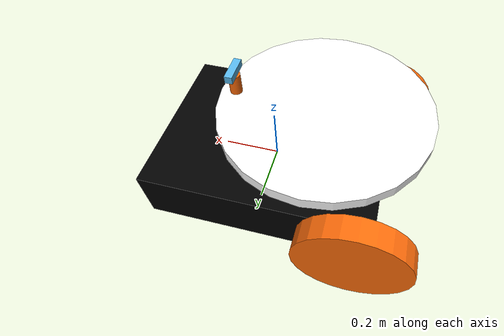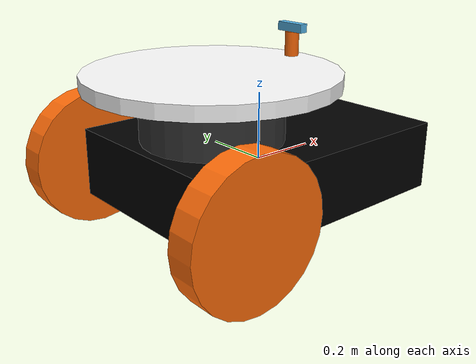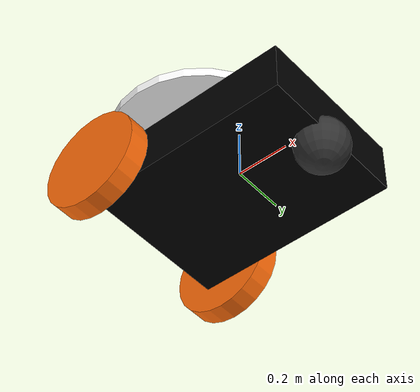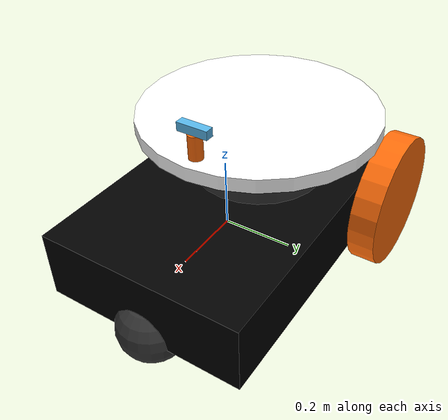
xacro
<?xml version="1.0"?>

<robot name="triwheeler" xmlns:xacro="https://www.ros.org/wiki/xacro" >

    <!-- Included URDF Files -->
    <xacro:include filename="$(find simbot_description)/urdf/triwheeler.urdf.xacro" />

    <!-- Instantiate triwheeler_base_macro once (has no parameters atm) -->
    <xacro:triwheeler_base_macro />

    <!-- RGB-D camera -->
    <xacro:include filename="$(find simbot_description)/urdf/rgbd_camera.urdf.xacro" />
    <xacro:rgbd_camera parent="plate">
        <origin xyz="${6*plate_r/7} 0.0 ${plate_l/2+holder_l/2}" rpy="0 0 0"/>
    </xacro:rgbd_camera>

</robot>

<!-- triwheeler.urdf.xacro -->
<robot xmlns:xacro="https://www.ros.org/wiki/xacro" >

    <!-- constants for robot dimensions -->
    <xacro:property name="PI" value="3.1415926535897931"/>
    <!-- properties of chassis link -->
    <xacro:property name="chassis_x" value="0.8" />
    <xacro:property name="chassis_y" value="0.6" />
    <xacro:property name="chassis_z" value="0.2" />
    <xacro:property name="chassis_m" value="4" />
    <!-- properties of plate link -->
    <xacro:property name="plate_r" value="0.35"/>
    <xacro:property name="plate_l" value="0.04"/>
    <xacro:property name="plate_m" value="0.2"/>
    <!-- properties of plate support link -->
    <xacro:property name="support_r" value="0.2"/>
    <xacro:property name="support_l" value="0.15"/>
    <xacro:property name="support_m" value="0.8"/>
    <!-- properties of link_caster -->
    <xacro:property name="caster_r" value="0.1"/>
    <xacro:property name="caster_m" value="0.1"/>
    <!-- properties of wheel -->
    <xacro:property name="wheel_r" value="0.2"/>
    <xacro:property name="wheel_l" value="0.08"/>
    <xacro:property name="wheel_m" value="0.5"/>
    <!-- wheel mounting positions -->
    <xacro:property name="wheelbase" value="0.7" />
    <xacro:property name="track" value="0.7" />

    <!-- import all gazebo-customization elements, including gazebo colors -->
    <!-- import rviz colors -->
    <xacro:include filename="$(find simbot_description)/urdf/materials.urdf.xacro" />

    <!-- main triwheeler link -->
    <xacro:macro name="triwheeler_base_macro">
        <!-- chassis is the center of the robot's bottom plate -->
        <link name="chassis">
            <visual>
                <origin xyz="0 0 0" rpy="0 0 0" />
                <geometry>
                    <box size="${chassis_x} ${chassis_y} ${chassis_z}"/> />
                </geometry>
                <material name="black"/>
            </visual>
            <collision>
                <origin xyz="0 0 0" rpy="0 0 0" />
                <geometry>
                    <box size="${chassis_x} ${chassis_y} ${chassis_z}"/> />
                </geometry>
            </collision>
        </link>
        <!-- kdl does not support a root link with an inertia, create a dummy link only contains inertia of base_link -->
        <joint name="chassis-chassis_inertial" type="fixed">
            <origin xyz="0 0 0" rpy="0 0 0" />
            <parent link="chassis" />
            <child link="chassis_inertial" />
        </joint>
        <link name="chassis_inertial">
            <inertial>
                <mass value="${chassis_m}"/>
                <origin rpy="0 0 0" xyz="0 0 0"/>
                <inertia ixx="${1/12*chassis_m*(chassis_y*chassis_y+chassis_z*chassis_z)}" ixy="0" ixz="0" iyy="${1/12*chassis_m*(chassis_z*chassis_z+chassis_x*chassis_x)}" iyz="0" izz="${1/12*chassis_m*(chassis_x*chassis_x+chassis_y*chassis_y)}"/>
            </inertial>
        </link>

        <!-- left wheel -->
        <joint name="$chassis-left_wheel" type="continuous">
            <origin xyz="-${wheelbase/2} ${track/2} 0" rpy="0 0 0" />
            <parent link="chassis"/>
            <child link="left_wheel"/>
            <axis xyz="0 1 0" rpy="0 0 0" />
        </joint>

        <link name="left_wheel">
            <visual>
                <origin rpy="${PI/2} 0 0" xyz="0 0 0"/>
                <geometry>
                    <cylinder length="${wheel_l}" radius="${wheel_r}"/>
                </geometry>
                <material name="orange"/>
            </visual>
            <collision>
                <origin rpy="${PI/2} 0 0" xyz="0 0 0" />
                <geometry>
                    <cylinder length="${wheel_l}" radius="${wheel_r}"/>
                </geometry>
            </collision>
            <inertial>
                <mass value="${wheel_m}"/>
                <origin rpy="${PI/2} 0 0" xyz="0 0 0"/>
                <inertia ixx="${1/12*wheel_m*(3*wheel_r*wheel_r+wheel_l*wheel_l)}" ixy="0" ixz="0" iyy="${1/12*wheel_m*(3*wheel_r*wheel_r+wheel_l*wheel_l)}" iyz="0" izz="${1/2*wheel_m*wheel_r*wheel_r}"/>
            </inertial>
        </link>

        <!-- right wheel -->
        <joint name="$chassis-right_wheel" type="continuous">
            <origin xyz="-${wheelbase/2} -${track/2} 0" rpy="0 0 0" />
            <parent link="chassis"/>
            <child link="right_wheel"/>
            <axis xyz="0 1 0" rpy="0 0 0" />
        </joint>

        <link name="right_wheel">
            <visual>
                <origin rpy="${PI/2} 0 0" xyz="0 0 0"/>
                <geometry>
                    <cylinder length="${wheel_l}" radius="${wheel_r}"/>
                </geometry>
                <material name="orange"/>
            </visual>
            <collision>
                <origin rpy="${PI/2} 0 0" xyz="0 0 0" />
                <geometry>
                    <cylinder length="${wheel_l}" radius="${wheel_r}"/>
                </geometry>
            </collision>
            <inertial>
                <mass value="${wheel_m}"/>
                <origin rpy="${PI/2} 0 0" xyz="0 0 0"/>
                <inertia ixx="${1/12*wheel_m*(3*wheel_r*wheel_r+wheel_l*wheel_l)}" ixy="0" ixz="0" iyy="${1/12*wheel_m*(3*wheel_r*wheel_r+wheel_l*wheel_l)}" iyz="0" izz="${1/2*wheel_m*wheel_r*wheel_r}"/>
            </inertial>
        </link>

        <!-- caster ball -->
        <joint name="joint_chassis_caster" type="fixed">
            <origin rpy="0 0 0" xyz="${wheelbase/2} 0 -${chassis_z/2}"/>
            <parent link="chassis"/>
            <child link="caster"/>
        </joint>

        <link name="caster">
            <visual>
                <origin rpy="0 0 0" xyz="0 0 0"/>
                <geometry>
                    <sphere radius="${caster_r}"/>
                </geometry>
                <material name="grey"/>
            </visual>
            <collision>
                <origin rpy=" 0 0 0" xyz="0 0 0"/>
                <geometry>
                    <sphere radius="${caster_r}"/>
                </geometry>
            </collision>
            <inertial>
                <mass value="${caster_m}"/>
                <origin rpy="0 0 0" xyz="0 0 0"/>
                <inertia ixx="${2/5*caster_m*caster_r*caster_r}" ixy="0" ixz="0" iyy="${2/5*caster_m*caster_r*caster_r}" iyz="0" izz="${2/5*caster_m*caster_r*caster_r}"/>
            </inertial>
        </link>

        <joint name="chassis-support" type="fixed">
            <origin rpy="0 0 0" xyz="-${wheelbase/4} 0 ${chassis_z/2+support_l/2}"/>
            <parent link="chassis"/>
            <child link="support"/>
        </joint>

        <link name="support">
            <visual>
                <origin rpy="0 0 0" xyz="0 0 0"/>
                <geometry>
                    <cylinder length="${support_l}" radius="${support_r}"/>
                </geometry>
                <material name="grey"/>
            </visual>
            <collision>
                <origin rpy="0 0 0" xyz="0 0 0" />
                <geometry>
                    <cylinder length="${support_l}" radius="${support_r}"/>
                </geometry>
            </collision>
            <inertial>
                <mass value="${support_m}"/>
                <origin rpy="0 0 0" xyz="0 0 0"/>
                <inertia ixx="${1/12*support_m*(3*support_r*support_r+support_l*support_l)}" ixy="0" ixz="0" iyy="${1/12*support_m*(3*support_r*support_r+support_l*support_l)}" iyz="0" izz="${1/2*support_m*support_r*support_r}"/>
            </inertial>
        </link>

        <joint name="support-plate" type="revolute">
            <origin rpy="0 0 0" xyz="0 0 ${support_l/2+plate_l/2}"/>
            <parent link="support"/>
            <child link="plate"/>
            <limit effort="0" lower="0" upper="0" velocity="0"/>
            <axis rpy="0 0 0" xyz="0 0 1"/>
        </joint>

        <link name="plate">
            <visual>
                <origin rpy="0 0 0" xyz="0 0 0"/>
                <geometry>
                    <cylinder length="${plate_l}" radius="${plate_r}"/>
                </geometry>
                <material name="white"/>
            </visual>
            <collision>
                <origin rpy="0 0 0" xyz="0 0 0" />
                <geometry>
                    <cylinder length="${plate_l}" radius="${plate_r}"/>
                </geometry>
            </collision>
            <inertial>
                <mass value="${plate_m}"/>
                <origin rpy="0 0 0" xyz="0 0 0"/>
                <inertia ixx="${1/12*plate_m*(3*plate_r*plate_r+plate_l*plate_l)}" ixy="0" ixz="0" iyy="${1/12*plate_m*(3*plate_r*plate_r+plate_l*plate_l)}" iyz="0" izz="${1/2*plate_m*plate_r*plate_r}"/>
            </inertial>
        </link>

        <joint name="chassis-imu" type="revolute">
            <origin rpy="0 0 0" xyz="${chassis_x/4} 0 ${chassis_z/2}"/>
            <parent link="chassis"/>
            <child link="imu"/>
            <limit lower="0" upper="0" effort="0" velocity="0"/>
            <axis xyz="0 0 1"/>
        </joint>
        <link name="imu"/>

        <transmission name="left_wheel-trans" type="simpletransmission">
            <type>transmission_interface/simpletransmission</type>
            <actuator name="left_wheel-motor">
                <mechanicalreduction>1</mechanicalreduction>
            </actuator>
            <joint name="chassis-left_wheel">
                <hardwareinterface>hardware_interface/velocityjointinterface</hardwareinterface>
            </joint>
        </transmission>

        <transmission name="right_wheel-trans" type="simpletransmission">
            <type>transmission_interface/simpletransmission</type>
            <actuator name="right_wheel-motor">
                <mechanicalreduction>1</mechanicalreduction>
            </actuator>
            <joint name="chassis-right_wheel">
                <hardwareinterface>hardware_interface/velocityjointinterface</hardwareinterface>
            </joint>
        </transmission>

        <gazebo reference="imu">
            <gravity>true</gravity>
            <sensor name="imu_sensor" type="imu">
                <always_on>true</always_on>
                <update_rate>100</update_rate>
                <visualize>true</visualize>
                <topic>__default_topic__</topic>
                <plugin filename="libgazebo_ros_imu_sensor.so" name="imu_plugin">
                    <topicName>imu</topicName>
                    <bodyName>imu_link</bodyName>
                    <updateRateHZ>10.0</updateRateHZ>
                    <gaussianNoise>0.0</gaussianNoise>
                    <xyzOffset>0 0 0</xyzOffset>
                    <rpyOffset>0 0 0</rpyOffset>
                    <frameName>imu_link</frameName>
                </plugin>
                <pose>0 0 0 0 0 0</pose>
            </sensor>
        </gazebo>

    </xacro:macro>

</robot>

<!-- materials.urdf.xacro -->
<robot>

  <material name="black">
    <color rgba="0.0 0.0 0.0 1.0"/>
  </material>

  <material name="blue">
    <color rgba="0.0 0.0 0.8 1.0"/>
  </material>

  <material name="green">
    <color rgba="0.0 0.8 0.0 1.0"/>
  </material>

  <material name="grey">
    <color rgba="0.2 0.2 0.2 1.0"/>
  </material>

  <material name="orange">
    <color rgba="${255/255} ${108/255} ${10/255} 1.0"/>
  </material>

  <material name="brown">
    <color rgba="${222/255} ${207/255} ${195/255} 1.0"/>
  </material>

  <material name="red">
    <color rgba="0.8 0.0 0.0 1.0"/>
  </material>

  <material name="white">
    <color rgba="1.0 1.0 1.0 1.0"/>
  </material>

  <material name="uc_red">
    <color rgba="${224/255} ${1/255} ${34/255} 1.0"/>
  </material>

  <material name="aluminum">
    <color rgba="0.5 0.5 0.5 1"/>
  </material>

</robot>

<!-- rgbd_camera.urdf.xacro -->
<robot xmlns:xacro="https://www.ros.org/wiki/xacro">
    <xacro:property name="M_PI" value="3.1415926535897931" />

    <xacro:property name="holder_mass" value="0.072"/>
    <xacro:property name="holder_r" value="0.02"/>
    <xacro:property name="holder_l" value="0.07"/>

    <xacro:property name="camera_width" value="0.09"/>
    <xacro:property name="camera_height" value="0.025"/>
    <xacro:property name="camera_depth" value="0.025"/>
    <xacro:property name="camera_mass" value="0.072"/>

    <xacro:macro name="rgbd_camera" params="parent *origin">
        <joint name="${parent}-camera_holder" type="revolute">
            <xacro:insert_block name="origin" />
            <parent link="${parent}"/>
            <child link="camera_holder"/>
            <limit lower="${-M_PI/4}" upper="${M_PI/4}" effort="50" velocity="${M_PI}"/>
            <axis xyz="0 0 1"/>
        </joint>

        <link name="camera_holder">
            <visual>
                <origin rpy="0 0 0" xyz="0 0 0"/>
                <geometry>
                    <cylinder length="${holder_l}" radius="${holder_r}"/>
                </geometry>
                <material name="orange"/>
            </visual>
            <collision>
                <origin rpy="0 0 0" xyz="0 0 0" />
                <geometry>
                    <cylinder length="${holder_l}" radius="${holder_r}"/>
                </geometry>
            </collision>
            <inertial>
				<mass value="${holder_mass}" />
				<origin xyz="0 0 0" />
				<inertia ixx="${1/12*holder_mass*(3*holder_r*holder_r+holder_l*holder_l)}" ixy="0" ixz="0" iyy="${1/12*holder_mass*(3*holder_r*holder_r+holder_l*holder_l)}" iyz="0" izz="${1/2*holder_mass*holder_r*holder_r}"/>
			</inertial>
		</link>

        <joint name="camera_holder-camera_body" type="revolute">
            <origin rpy="0 0 0" xyz="0 0 ${holder_l/2+camera_height/2}"/>
            <parent link="camera_holder"/>
            <child link="camera_body"/>
            <limit lower="${-M_PI/6}" upper="${M_PI/12}" effort="50" velocity="${M_PI}"/>
            <axis xyz="0 1 0"/>
        </joint>

        <link name="camera_body">
			<visual>
				<origin xyz="0 0 0" rpy="0 0 0" />
				<geometry>
					<box size="${camera_depth} ${camera_width} ${camera_height}" />
				</geometry>
                <color rgba="0.5 0.5 0.5 1"/>
			</visual>
			<collision>
				<origin xyz="0 0 0" rpy="0 0 0" />
				<geometry>
                    <box size="${camera_depth} ${camera_width} ${camera_height}" />
				</geometry>
			</collision>
            <inertial>
				<mass value="${camera_mass}" />
				<origin xyz="0 0 0" />
				<inertia ixx="5.8083e-4" ixy="0" ixz="0" iyy="3.0833e-5" iyz="0" izz="5.9083e-4" />
			</inertial>
		</link>

        <joint name="camera_body-depth_frame" type="fixed">
            <origin xyz="${camera_depth/2} 0.0175 0.0" rpy="${-M_PI/2} 0 ${-M_PI/2}" />
            <parent link="camera_body" />
            <child link="camera_depth_frame"/>
        </joint>

        <link name="camera_depth_frame"/>

        <joint name="camera_body-depth_optical" type="fixed">
            <origin xyz="${camera_depth/2} 0.0175 0" rpy="0 0 0" />
            <parent link="camera_body" />
            <child link="camera_depth_optical"/>
        </joint>

        <link name="camera_depth_optical"/>

        <gazebo reference="camera_depth_optical">
            <sensor type="depth" name="camera">
                <update_rate>30</update_rate>
                <camera>
                    <horizontal_fov>${69.4 * M_PI/180.0}</horizontal_fov>
                    <image>
                        <format>B8G8R8</format>
                        <width>640</width>
                        <height>480</height>
                    </image>
                    <clip>
                        <near>0.3</near>
                        <far>10</far>
                    </clip>
                </camera>
                <plugin name="camera_controller" filename="libgazebo_ros_openni_kinect.so">
                    <cameraName>camera</cameraName>
                    <imageTopicName>/camera/color/image_raw</imageTopicName>
                    <cameraInfoTopicName>/camera/color/camera_info</cameraInfoTopicName>
                    <depthImageTopicName>/camera/depth/image_raw</depthImageTopicName>
                    <depthImageInfoTopicName>/camera/depth/camera_info</depthImageInfoTopicName>
                    <pointCloudTopicName>/camera/depth/points</pointCloudTopicName>
                    <frameName>camera</frameName>
                </plugin>
            </sensor>
        </gazebo>

    </xacro:macro>

</robot>
